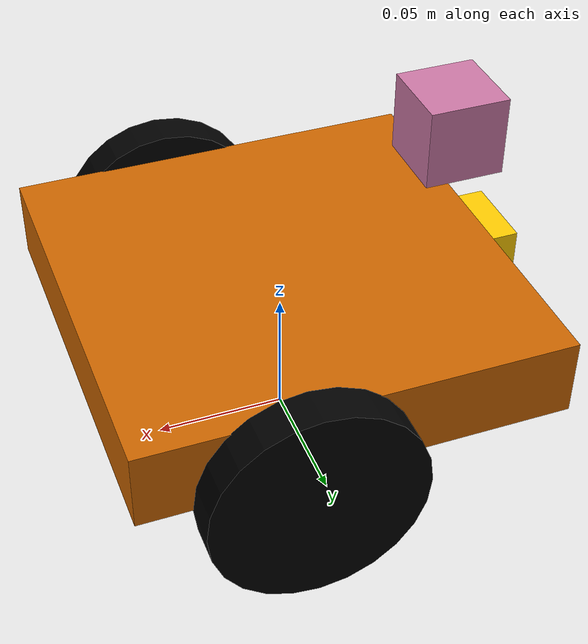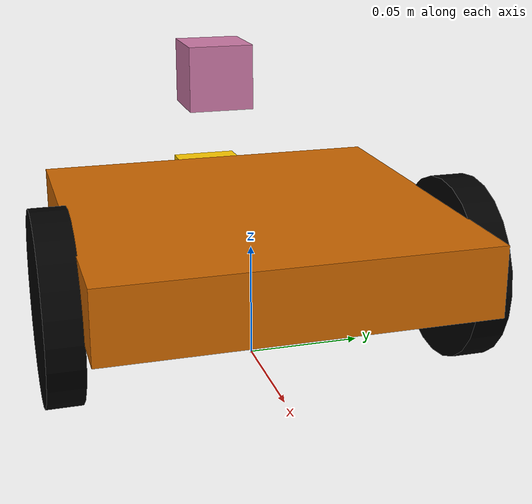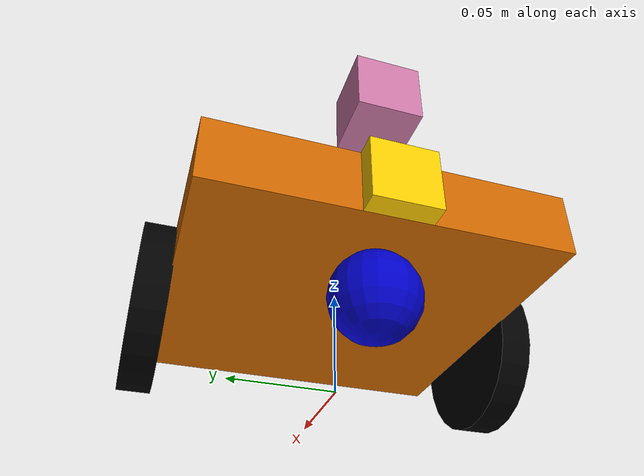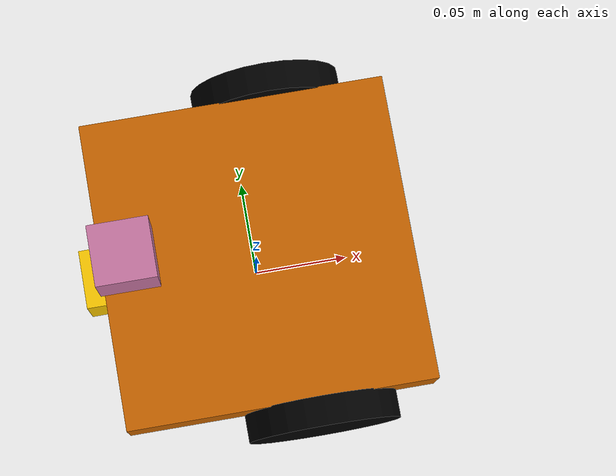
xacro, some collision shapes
<?xml version="1.0"?>
<robot xmlns:xacro="http://www.ros.org/wiki/xacro" name="dd_sim">

    <!--Parameters-->
    <xacro:property name="base_width" value="0.16"/>
    <xacro:property name="base_length" value="0.16"/>
    <xacro:property name="base_height" value="0.03"/>
    <xacro:property name="wheel_radius" value="0.04"/>
    <xacro:property name="wheel_length" value="0.015"/>
    <xacro:property name="wheel_separation" value="0.15"/>
    <xacro:property name="base_wheel_gap" value="0.007"/>
    <xacro:property name="wheel_offset" value="0.02"/>
    <xacro:property name="ball_radius" value="${wheel_radius/2}"/>
    <xacro:property name="ball_offset" value="-0.052"/>

    <xacro:property name="link_01_radius" value="0.02"/>
    <xacro:property name="link_01_length" value="0.2"/>
    <xacro:property name="link_02_width"  value="0.03"/>
    <xacro:property name="link_02_length" value="0.2"/>
    <xacro:property name="link_02_height" value="0.03"/>
    <xacro:property name="link_03_width"  value="0.03"/>
    <xacro:property name="link_03_length" value="0.2"/>
    <xacro:property name="link_03_height" value="0.03"/>
    <xacro:property name="link_04_radius" value="0.01"/>
    <xacro:property name="link_04_length" value="0.1"/>

    <xacro:property name="camera_width" value="0.03"/>
    <xacro:property name="camera_length" value="0.01"/>
    <xacro:property name="camera_height" value="0.03"/>

    <xacro:property name="gripper_width"  value="0.02"/>
    <xacro:property name="gripper_length" value="0.01"/>
    <xacro:property name="gripper_height" value="0.02"/>

    <xacro:property name="hokuyo_width" value="0.03"/>
    <xacro:property name="hokuyo_length" value="0.03"/>
    <xacro:property name="hokuyo_height" value="0.03"/>

    <!--Color Properties-->
    <material name="blue">
        <color rgba="0 0 0.8 1"/>
    </material>
    <material name="black">
        <color rgba="0 0 0 1"/>
    </material>
    <material name="white">
        <color rgba="1 1 1 1"/>
    </material>
    <material name="red">
        <color rgba="0.8 0.0 0.0 1.0"/>
    </material>
    <material name = "orange">
		<color rgba ="0.8 0.4 0.0 1.0"/>
	</material>
    <material name = "green">
		<color rgba ="0 0.8 0.0 1.0"/>
	</material>
    <material name = "purple">
		<color rgba ="0.8 0 0.4 1.0"/>
	</material>
    <material name = "yellow">
		<color rgba ="1 0.8 0 1.0"/>
	</material>
    <material name = "grey">
		<color rgba ="0.5 0.5 0.5 1.0"/>
	</material>

    <!--Interial macros-->
    <xacro:macro name="cylinder_inertia" params="m r h">
        <inertial>
        <mass value="${m}"/>
        <inertia ixx="${m*(3*r*r+h*h)/12}" ixy = "0" ixz = "0" iyy="${m*(3*r*r+h*h)/12}" iyz = "0" izz="${m*r*r/2}"/>
        </inertial>
    </xacro:macro>

    <xacro:macro name="box_inertia" params="m w h d">
        <inertial>
        <mass value="${m}"/>
        <inertia ixx="${m / 12.0 * (d*d + h*h)}" ixy="0.0" ixz="0.0" iyy="${m / 12.0 * (w*w + h*h)}" iyz="0.0" izz="${m / 12.0 * (w*w + d*d)}"/>
        </inertial>
    </xacro:macro>

    <xacro:macro name="sphere_inertia" params="m r">
        <inertial>
        <mass value="${m}"/>
        <inertia ixx="${2.0*m*(r*r)/5.0}" ixy="0.0" ixz="0.0" iyy="${2.0*m*(r*r)/5.0}" iyz="0.0" izz="${2.0*m*(r*r)/5.0}"/>
        </inertial>
    </xacro:macro>

    <!-- add properties to gazebo-->
    <gazebo reference = "base_link">
        <material>Gazebo/Orange</material>
    </gazebo>
    <gazebo reference = "left_wheel">
        <mu1>10</mu1>
        <mu2>10</mu2>
        <kp>500000.0</kp>
        <kd>10.0</kd>
        <minDepth>0.001</minDepth>
        <maxVel>0.1</maxVel>
        <fdir1>1 0 0</fdir1>
        <material>Gazebo/Black</material>
    </gazebo>
    <gazebo reference = "right_wheel">
        <mu1>10</mu1>
        <mu2>10</mu2>
        <kp>500000.0</kp>
        <kd>10.0</kd>
        <minDepth>0.001</minDepth>
        <maxVel>0.1</maxVel>
        <fdir1>1 0 0</fdir1>
        <material>Gazebo/Black</material>
    </gazebo>
    <gazebo reference = "ball_wheel">
        <mu1>10</mu1>
        <mu2>10</mu2>
        <kp>500000.0</kp>
        <kd>10.0</kd>
        <minDepth>0.001</minDepth>
        <maxVel>0.1</maxVel>
        <fdir1>1 0 0</fdir1>
        <material>Gazebo/Blue</material>
    </gazebo>
    <gazebo reference = "link_01">
        <material>Gazebo/Red</material>
    </gazebo>
    <gazebo reference = "link_02">
        <material>Gazebo/White</material>
    </gazebo>
    <gazebo reference = "link_03">
        <material>Gazebo/Green</material>
    </gazebo>
    <gazebo reference = "link_04">
        <material>Gazebo/Purple</material>
    </gazebo>
    <gazebo reference = "camera_link">
        <material>Gazebo/Yellow</material>
    </gazebo>
    <gazebo reference = "left_gripper">
        <material>Gazebo/Grey</material>
    </gazebo>
    <gazebo reference = "right_gripper">
        <material>Gazebo/Grey</material>
    </gazebo>
    <gazebo reference = "front_gripper">
        <material>Gazebo/Grey</material>
    </gazebo>
    <gazebo reference = "back_gripper">
        <material>Gazebo/DarkGrey</material>
    </gazebo>

    <!--foorprint-->
    <link name = "footprint">
        <xacro:box_inertia m="0.1" w="0.001" h="0.001" d = "0.001"/>
        <visual>
            <origin xyz = "0 0 0 " rpy = "0 0 0 "/>
            <geometry>
                <box size="0.001 0.001 0.001"/>
            </geometry>
        </visual>
    </link>

    <!--Base Link-->
    <link name="base_link">
        <xacro:box_inertia m="3" w="${base_length}" h="${base_width}" d="${base_height}"/>
        <visual>
          <geometry>
            <box size="${base_length} ${base_width} ${base_height}"/>
          </geometry>
          <!--origin rpy="0 0 0" xyz="0 0 ${(base_height/2)+(2*ball_radius)}"/-->
          <material name="orange"/>
        </visual>
        <collision>
          <geometry>
            <box size="${base_length} ${base_width} ${base_height}"/>
          </geometry>
          <!--origin rpy="0 0 0" xyz="0 0 ${(base_height/2)+(2*ball_radius)}"/-->
        </collision>
    </link>

    <!--base link to footprint-->
    <joint name = "base_link_footprint" type="fixed">
        <origin xyz = "0 0 ${wheel_radius + wheel_length}" rpy = "0 0 0"/>
        <parent link = "footprint"/>
        <child link="base_link"/>
    </joint>

    <!--Wheel link & joint macro-->
    <xacro:macro name="wheel" params="prefix reflect">
        <link name="${prefix}_wheel">
        <visual>
            <origin xyz="0 0 0" rpy="${pi/2} 0 0"/>
            <geometry>
                <cylinder radius="${wheel_radius}" length="${wheel_length}"/>
            </geometry>
            <material name="black"/>
        </visual>
        <collision>
            <origin xyz="0 0 0" rpy="${pi/2} 0 0"/>
            <geometry>
                <cylinder radius="${wheel_radius}" length="${wheel_length}"/>
            </geometry>
        </collision>
        <xacro:cylinder_inertia m="2" r="${wheel_radius}" h="${wheel_length}"/>
        </link>

        <joint name="${prefix}_wheel_joint" type="continuous">
            <axis xyz="0 1 0" rpy="0 0 0" />
            <parent link="base_link"/>
            <child link="${prefix}_wheel"/>
            <origin xyz="${wheel_offset} ${(base_width/2+base_wheel_gap)*reflect} -${wheel_length}" rpy="0 0 0"/>
        </joint>
    </xacro:macro>

    <!--Create Left & Right Wheel links/joints-->
    <xacro:wheel prefix="left" reflect="1"/>
    <xacro:wheel prefix="right" reflect="-1"/>

    <!--ball Wheel Link-->
    <link name="ball_wheel">
        <visual>
            <origin xyz="0 0 0" rpy="0 0 0"/>
            <geometry>
                <sphere radius="${ball_radius}"/>
            </geometry>
            <material name="blue"/>
        </visual>
        <collision>
        <origin xyz="0 0 0" rpy="0 0 0"/>
        <geometry>
            <sphere radius="${ball_radius}"/>
        </geometry>
        </collision>
        <xacro:sphere_inertia m="2" r="${ball_radius}"/>
    </link>

    <!--Ball Wheel Joint-->
    <joint name="ball_wheel_joint" type="continuous">
        <axis xyz="0 1 0" rpy="0 0 0" />
        <parent link="base_link"/>
        <child link="ball_wheel"/>
        <origin xyz="${ball_offset} 0 -${ball_radius+wheel_length}" rpy="0 0 0"/>
    </joint>

    <!--camera-->
    <link name = "camera_link">
        <visual>
            <origin rpy = "0 0 0 " xyz = " 0 0 0"/>
            <geometry>
                <box size="${camera_length} ${camera_width} ${camera_height}"/>
            </geometry>
            <material name="yellow"/>
        </visual>
        <collision>
            <origin xyz="0 0 0" rpy="0 0 0"/>
            <geometry>
                <box size="${camera_length} ${camera_width} ${camera_height}"/>
            </geometry>
        </collision>
        <xacro:box_inertia m="0.1" w="${camera_length}" h="${camera_width}" d="${camera_height}"/>
    </link>

    <joint name="camera_joint" type="fixed">
        <axis xyz="0 1 0"/>
        <origin rpy = "0 0 ${pi} " xyz = "${-base_width/2-camera_length/2} 0 0"/>
        <parent link = "base_link"/>
        <child link = "camera_link"/>
    </joint>

    <!--hokuyo laser-->
    <link name = "hokuyo_link">
        <collision>
            <origin xyz = "0 0 ${hokuyo_height} " rpy = "0 0 0 "/>>
            <geometry>
                <box size = "${hokuyo_width} ${hokuyo_length} ${hokuyo_height} "/>
            </geometry>
        </collision>
        <visual>
            <origin xyz = "0 0 ${hokuyo_height} " rpy = "0 0 0 "/>>
            <geometry>
                <mesh filename="package://dd_sim/meshes/hokuyo.dae"/>
            </geometry>
        </visual>
        <xacro:box_inertia m="0.01" w="${hokuyo_length}" h="${hokuyo_width}" d="${hokuyo_height}"/>
    </link>

    <joint name = "hokuyo_joint" type="fixed">
        <axis xyz = "0 1 0"/>
        <origin rpy = "0 0 ${pi} " xyz = "${-base_width/2+hokuyo_length/2} 0 ${hokuyo_height}"/>
        <parent link = "base_link"/>
        <child link = "hokuyo_link"/>
    </joint>

    <xacro:include filename="$(find dd_sim)/urdf/dd_gazebo_plugins.xacro"/>
    <xacro:include filename="$(find dd_sim)/urdf/camera.gazebo"/>
    <xacro:include filename="$(find dd_sim)/urdf/hokuyo.gazebo"/>
    <gazebo>
        <plugin name="gazebo_ros_control" filename="libgazebo_ros_control.so">
            <robotNamespace>/dd</robotNamespace>
        </plugin>
    </gazebo>

</robot>
